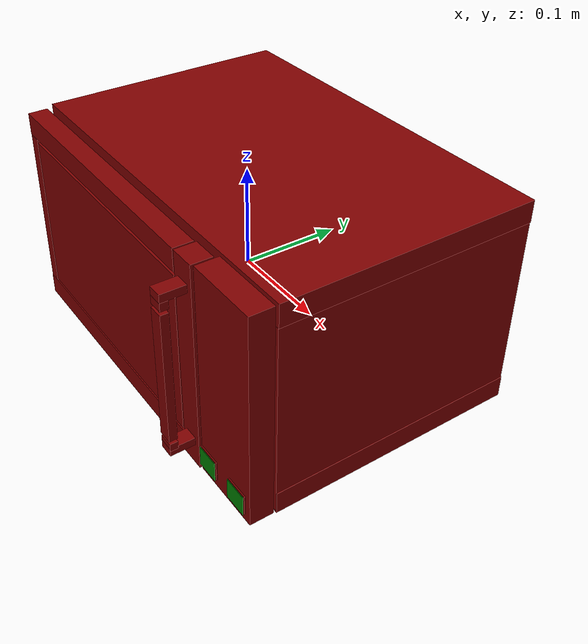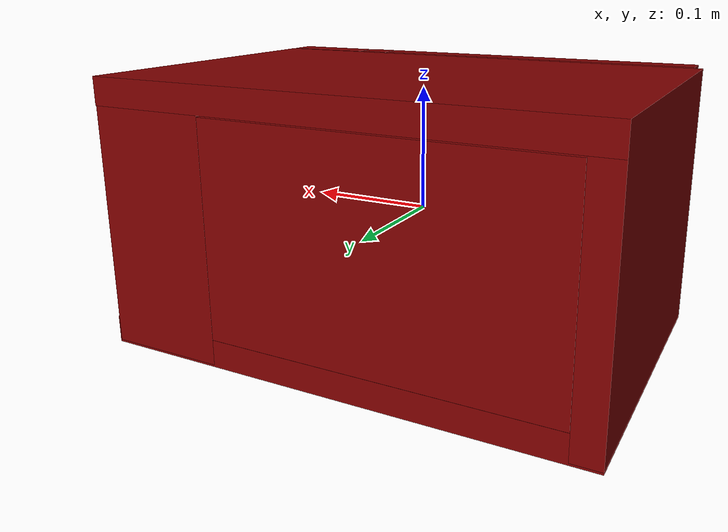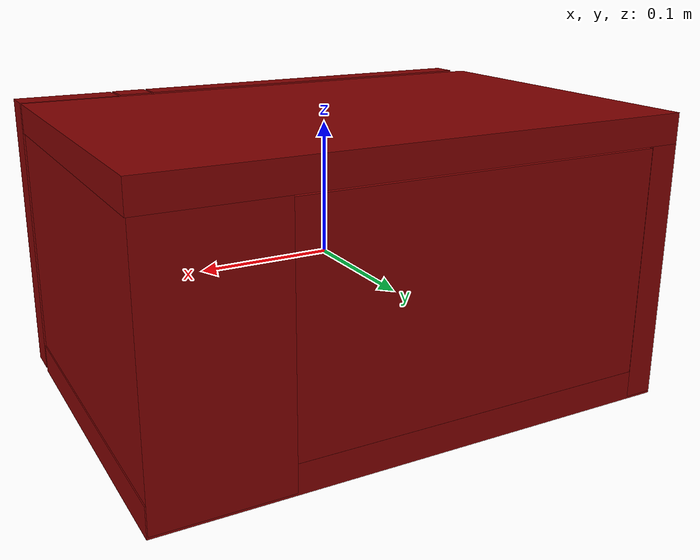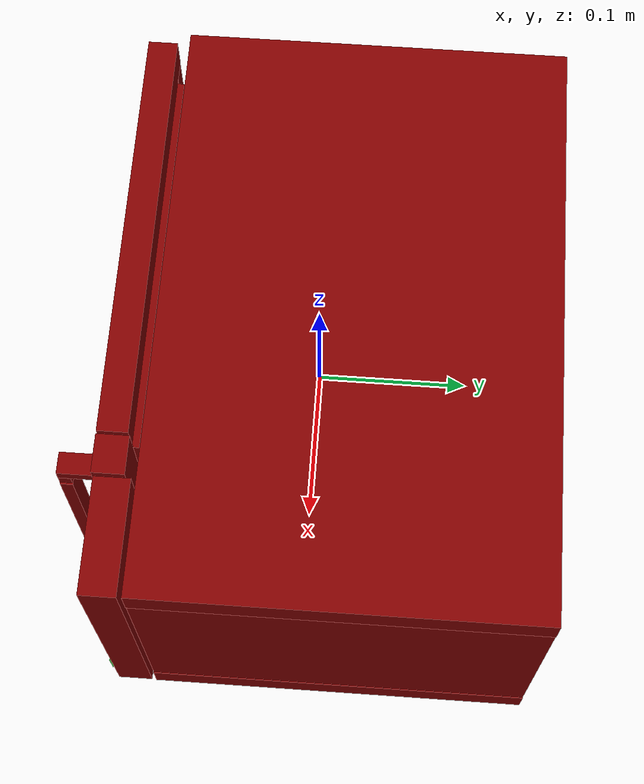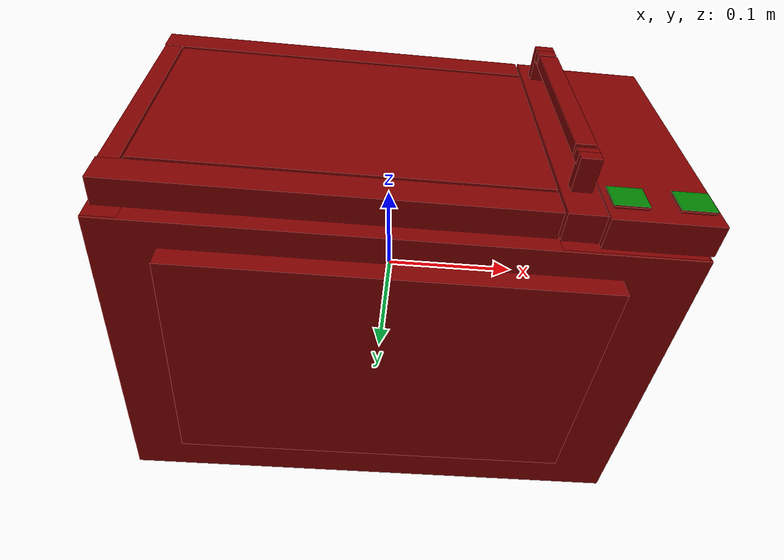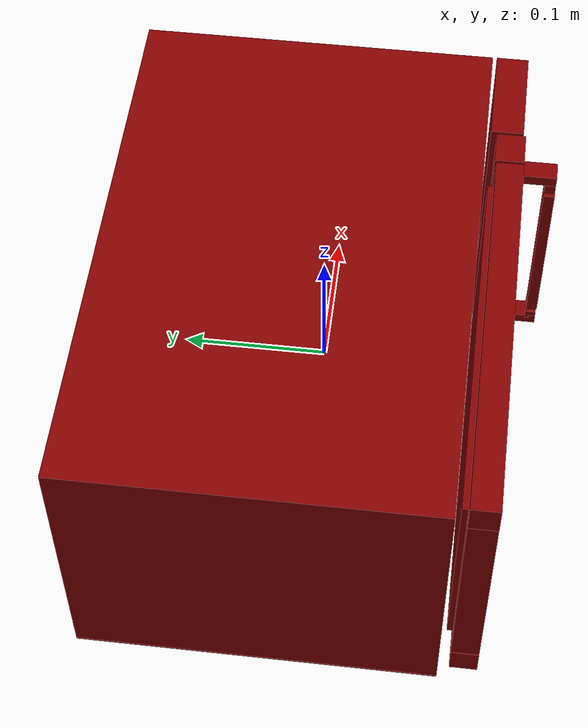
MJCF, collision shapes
<mujoco model="model">
  <compiler angle="radian"/>
  <asset>
    <mesh file="visuals/door.obj" name="door_vis"/>
    <mesh file="visuals/door_Clear.obj" name="door_Clear_vis"/>
    <mesh file="visuals/Body001.obj" name="Body001_vis"/>
    <mesh file="visuals/Button001.obj" name="Button001_vis"/>
    <mesh file="visuals/Button002.obj" name="Button002_vis"/>
    <mesh file="visuals/Disc001.obj" name="Disc001_vis"/>
    <texture file="visuals/T_BC001.png" name="Body001_material" type="2d"/>
    <material name="Body001_material" rgba="1 1 1 1.0" texture="Body001_material" shininess="0.4472135901451111" specular="0.7"/>
    <texture file="visuals/T_BC001.png" name="door_material" type="2d"/>
    <material name="door_material" rgba="1 1 1 1.0" texture="door_material" shininess="0.4472135901451111" specular="0.3103448502657381"/>
    <texture file="visuals/T_BC001.png" name="door_Clear_material" type="2d"/>
    <material name="door_Clear_material" rgba="1 1 1 0.7461665868759155" texture="door_Clear_material" shininess="0.5" specular="0.3103448502657381"/>
    <texture file="visuals/T_BC001.png" name="Button001_material" type="2d"/>
    <material name="Button001_material" rgba="1 1 1 1.0" texture="Button001_material" shininess="0.4472135901451111" specular="0.3103448502657381"/>
    <texture file="visuals/T_BC001.png" name="Button002_material" type="2d"/>
    <material name="Button002_material" rgba="1 1 1 1.0" texture="Button002_material" shininess="0.4472135901451111" specular="0.3103448502657381"/>
    <texture file="visuals/T_BC001.png" name="Disc001_material" type="2d"/>
    <material name="Disc001_material" rgba="1 1 1 1.0" texture="Disc001_material" shininess="0.4472135901451111" specular="0.3103448502657381"/>
  </asset>
  <default>
    <default class="visual">
      <geom conaffinity="0" contype="0" group="1" type="mesh"/>
    </default>
    <default class="collision">
      <geom group="0" rgba="0.5 0 0 0.5"/>
    </default>
    <default class="spawn">
      <geom group="0" rgba="1 1 1 0.5" contype="0" conaffinity="0"/>
      <site group="0" rgba="1 1 1 0.5"/>
    </default>
    <default class="region">
      <geom group="1" conaffinity="0" contype="0" rgba="0 1 0 0"/>
    </default>
  </default>
  <worldbody>
    <body>
      <body name="object">
        <geom class="collision" type="box" pos="-0.041925 0.012726 -0.067472" size="0.10619761049747467 0.10619761049747467 0.0014588331105187535" quat="1.0 0.0 0.0 0.0" name="tray" rgba="0 1 0 0.5"/>
        <geom class="collision" type="box" pos="0.180769 -0.130923 -0.077153" size="0.011837364174425602 0.00031372011289931834 0.010231570340692997" quat="1.0 0.0 0.0 0.0" name="stop_button" rgba="0.0 0.5 0 0.5"/>
        <geom class="collision" type="box" pos="0.137751 -0.130868 -0.077088" size="0.011760476976633072 0.00032316945726051927 0.010124857537448406" quat="1.0 0.0 0.0 0.0" name="start_button" rgba="0.0 0.5 0 0.5"/>
        <geom mesh="Body001_vis" type="mesh" solimp="0.998 0.998 0.001" solref="0.001 1" density="100" friction="0.95 0.3 0.1" class="visual" material="Body001_material"/>
        <geom class="collision" type="box" pos="-0.000027 0.026010 -0.088408" size="0.1967504769563675 0.12734514474868774 0.011053582653403282" quat="1.0 0.0 0.0 0.0"/>
        <geom class="collision" type="box" pos="-0.004401 0.011719 -0.103289" size="0.14896005392074585 0.09288016706705093 0.010979345999658108" quat="1.0 0.0 0.0 0.0"/>
        <geom class="collision" type="box" pos="-0.185843 0.026010 0.008171" size="0.01093665137887001 0.12734535336494446 0.1060165986418724" quat="1.0 0.0 0.0 0.0"/>
        <geom class="collision" type="box" pos="0.147903 0.026010 0.008171" size="0.04804502800107002 0.1273454874753952 0.1060165986418724" quat="1.0 0.0 0.0 0.0"/>
        <geom class="collision" type="box" pos="-0.000073 0.026010 0.103345" size="0.1967046558856964 0.12734559178352356 0.010924296453595161" quat="1.0 0.0 0.0 0.0"/>
        <geom class="collision" type="box" pos="0.159948 -0.115822 0.008335" size="0.0368318110704422 0.011516908183693886 0.10593418776988983" quat="1.0 0.0 0.0 0.0"/>
        <geom class="collision" type="box" pos="0.000344 0.143279 0.006973" size="0.17503982782363892 0.009999715723097324 0.08441870659589767" quat="1.0 0.0 0.0 0.0"/>
        <body name="door">
          <joint axis="0.0 0.0 1.0" pos="-0.182067 -0.117349 0.010321" limited="true" name="microjoint" range="-1.5707963267948966 0.0" type="hinge" damping="1" frictionloss="1" armature=".01" stiffness="0.05"/>
          <geom mesh="door_vis" type="mesh" solimp="0.998 0.998 0.001" solref="0.001 1" density="100" friction="0.95 0.3 0.1" class="visual" material="door_material"/>
          <geom class="collision" type="box" pos="-0.047621 -0.119326 0.103345" size="0.1416284441947937 0.00977277010679245 0.010924289003014565" quat="1.0 0.0 0.0 0.0"/>
          <geom class="collision" type="box" pos="-0.047621 -0.119326 -0.086365" size="0.14162856340408325 0.009772757068276405 0.011053582653403282" quat="1.0 0.0 0.0 0.0"/>
          <geom class="collision" type="box" pos="-0.181936 -0.119326 0.008074" size="0.006484673358500004 0.009772750549018383 0.08364085108041763" quat="1.0 0.0 0.0 0.0"/>
          <geom class="collision" type="box" pos="0.108430 -0.118762 0.008335" size="0.012527601793408394 0.010337193496525288 0.10593418031930923" quat="1.0 0.0 0.0 0.0"/>
          <geom class="collision" type="box" pos="0.108930 -0.150099 0.008569" size="0.0070229326374828815 0.004023239016532898 0.06596163660287857" quat="1.0 0.0 0.0 0.0" name="door_handle"/>
          <geom class="collision" type="box" pos="0.108930 -0.141609 0.089930" size="0.007022940553724766 0.012130185961723328 0.0040232837200164795" quat="1.0 0.0 0.0 0.0"/>
          <geom class="collision" type="box" pos="0.108930 -0.141649 -0.069935" size="0.007022949401289225 0.012170114554464817 0.0040232837200164795" quat="1.0 0.0 0.0 0.0"/>
          <geom class="collision" type="box" pos="0.108930 -0.149804 0.081819" size="0.007022973615676165 0.00393609469756484 0.0040232837200164795" quat="1.0 0.0 0.0 0.0"/>
          <geom class="collision" type="box" pos="0.108930 -0.149804 -0.064753" size="0.007022979203611612 0.003936097491532564 0.0040232837200164795" quat="1.0 0.0 0.0 0.0"/>
          <body name="door_Clear">
            <geom mesh="door_Clear_vis" type="mesh" solimp="0.998 0.998 0.001" solref="0.001 1" density="100" friction="0.95 0.3 0.1" class="visual" material="door_Clear_material"/>
            <geom class="collision" type="box" pos="-0.039888 -0.117267 0.008229" size="0.13389630615711212 0.011832320131361485 0.0808444619178772" quat="1.0 0.0 0.0 0.0"/>
          </body>
        </body>
        <body name="Button001">
          <joint axis="0.0 1.0 0.0" pos="0.136713 -0.128983 -0.079091" limited="true" name="Button001_joint" range="0.0 0.001" type="slide" damping="1" frictionloss="1" armature=".01" stiffness="0.05"/>
          <geom mesh="Button001_vis" type="mesh" solimp="0.998 0.998 0.001" solref="0.001 1" density="100" friction="0.95 0.3 0.1" class="visual" material="Button001_material"/>
          <geom class="collision" type="box" pos="0.137751 -0.129159 -0.077088" size="0.011760491877794266 0.0006494778790511191 0.010124879889190197" quat="1.0 0.0 0.0 0.0"/>
        </body>
        <body name="Button002">
          <joint axis="0.0 1.0 0.0" pos="0.183101 -0.128983 -0.079116" limited="true" name="Button002_joint" range="0.0 0.001" type="slide" damping="1" frictionloss="1" armature=".01" stiffness="0.05"/>
          <geom mesh="Button002_vis" type="mesh" solimp="0.998 0.998 0.001" solref="0.001 1" density="100" friction="0.95 0.3 0.1" class="visual" material="Button002_material"/>
          <geom class="collision" type="box" pos="0.180769 -0.129270 -0.077153" size="0.01183738186955452 0.0006304854759946465 0.010231561958789825" quat="1.0 0.0 0.0 0.0"/>
        </body>
        <body name="Disc001">
          <joint axis="0.0 0.0 1.0" pos="-0.042177 0.011333 -0.069589" limited="false" name="Disc001_joint" range="0 360" type="hinge" damping="1" frictionloss="1" armature=".01" stiffness="0.05"/>
          <geom mesh="Disc001_vis" type="mesh" solimp="0.998 0.998 0.001" solref="0.001 1" density="100" friction="0.95 0.3 0.1" class="visual" material="Disc001_material"/>
          <geom class="collision" type="cylinder" pos="-0.041925 0.012726 -0.070718" size="0.10619761049747467 0.0014588331105187535" quat="1.0 0.0 0.0 0.0"/>
        </body>
        <geom class="region" name="reg_main" type="box" pos="0.0 0.012129000000000001 0.0" size="0.19678 0.141228 0.114269"/>
        <geom class="region" name="reg_int" type="box" pos="-0.0366705 0.016085499999999996 0.007878000000000003" size="0.1351815 0.11254249999999999 0.08000299999999999"/>
      </body>
    </body>
  </worldbody>
  <actuator>
    <motor name="microjoint_actuator" joint="microjoint" gear="10"/>
    <motor name="Button001_joint_actuator" joint="Button001_joint" gear="0.5"/>
    <motor name="Button002_joint_actuator" joint="Button002_joint" gear="0.5"/>
    <motor name="Disc001_joint_actuator" joint="Disc001_joint" gear="10"/>
  </actuator>
</mujoco>
